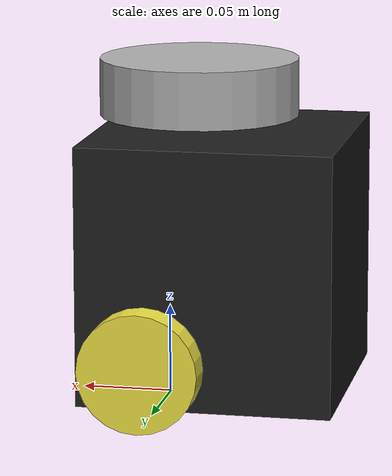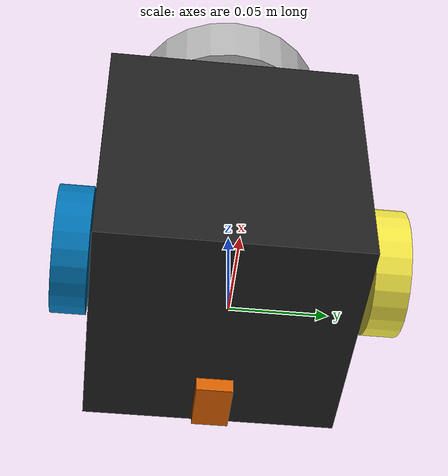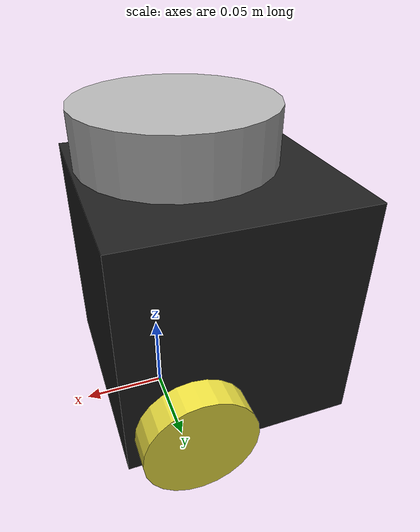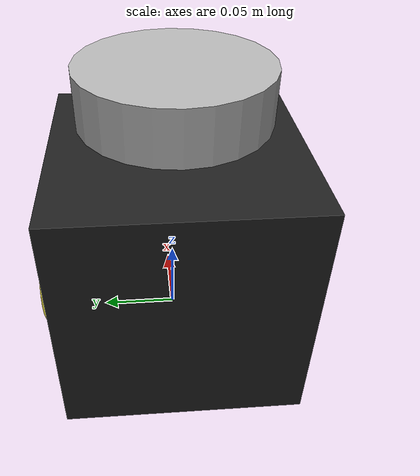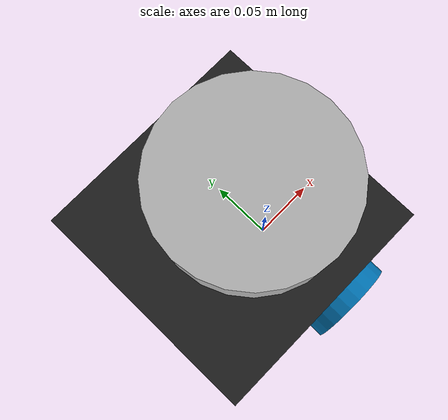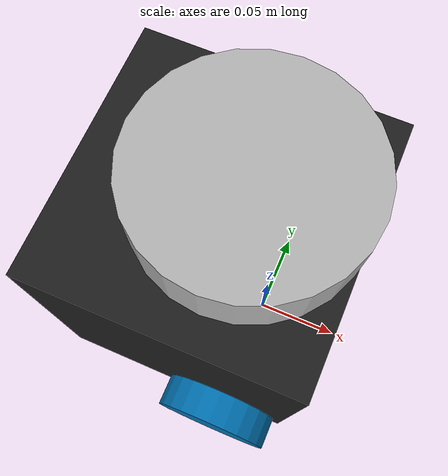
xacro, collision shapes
<?xml version="1.0" ?>
<robot name="turtlebot3_burger" xmlns:xacro="http://ros.org/wiki/xacro">
  <xacro:include filename="$(find prometheus_gazebo)/turtlebot3_model/urdf/common_properties.xacro"/>
  <xacro:include filename="$(find prometheus_gazebo)/turtlebot3_model/urdf/turtlebot3_burger.gazebo.xacro"/>
  <xacro:include filename="$(find prometheus_gazebo)/turtlebot3_model/urdf/camera_front.urdf.xacro"/>
  <xacro:include filename="$(find prometheus_gazebo)/turtlebot3_model/urdf/camera_front_config.urdf.xacro"/>

  <link name="base_footprint"/>

  <joint name="base_joint" type="fixed">
    <parent link="base_footprint"/>
    <child link="base_link"/>
    <origin xyz="0.0 0.0 0.010" rpy="0 0 0"/>
  </joint>

  <link name="base_link">
    <visual>
      <origin xyz="-0.032 0 0.0" rpy="0 0 0"/>
      <geometry>
        <mesh filename="package://prometheus_gazebo/turtlebot3_model/meshes/bases/burger_base.stl" scale="0.001 0.001 0.001"/>
      </geometry>
      <material name="light_black"/>
    </visual>

    <collision>
      <origin xyz="-0.032 0 0.070" rpy="0 0 0"/>
      <geometry>
        <box size="0.140 0.140 0.143"/>
      </geometry>
    </collision>

    <inertial>
      <origin xyz="0 0 0" rpy="0 0 0"/>
      <mass value="8.2573504e-01"/>
      <inertia ixx="2.2124416e-03" ixy="-1.2294101e-05" ixz="3.4938785e-05"
               iyy="2.1193702e-03" iyz="-5.0120904e-06"
               izz="2.0064271e-03" />
    </inertial>
  </link>

  <joint name="wheel_left_joint" type="continuous">
    <parent link="base_link"/>
    <child link="wheel_left_link"/>
    <origin xyz="0.0 0.08 0.023" rpy="-1.57 0 0"/>
    <axis xyz="0 0 1"/>
  </joint>

  <link name="wheel_left_link">
    <visual>
      <origin xyz="0 0 0" rpy="1.57 0 0"/>
      <geometry>
        <mesh filename="package://prometheus_gazebo/turtlebot3_model/meshes/wheels/left_tire.stl" scale="0.001 0.001 0.001"/>
      </geometry>
      <material name="dark"/>
    </visual>

    <collision>
      <origin xyz="0 0 0" rpy="0 0 0"/>
      <geometry>
        <cylinder length="0.018" radius="0.033"/>
      </geometry>
    </collision>

    <inertial>
      <origin xyz="0 0 0" />
      <mass value="2.8498940e-02" />
      <inertia ixx="1.1175580e-05" ixy="-4.2369783e-11" ixz="-5.9381719e-09"
               iyy="1.1192413e-05" iyz="-1.4400107e-11"
               izz="2.0712558e-05" />
      </inertial>
  </link>

  <joint name="wheel_right_joint" type="continuous">
    <parent link="base_link"/>
    <child link="wheel_right_link"/>
    <origin xyz="0.0 -0.080 0.023" rpy="-1.57 0 0"/>
    <axis xyz="0 0 1"/>
  </joint>

  <link name="wheel_right_link">
    <visual>
      <origin xyz="0 0 0" rpy="1.57 0 0"/>
      <geometry>
        <mesh filename="package://prometheus_gazebo/turtlebot3_model/meshes/wheels/right_tire.stl" scale="0.001 0.001 0.001"/>
      </geometry>
      <material name="dark"/>
    </visual>

    <collision>
      <origin xyz="0 0 0" rpy="0 0 0"/>
      <geometry>
        <cylinder length="0.018" radius="0.033"/>
      </geometry>
    </collision>

    <inertial>
      <origin xyz="0 0 0" />
      <mass value="2.8498940e-02" />
      <inertia ixx="1.1175580e-05" ixy="-4.2369783e-11" ixz="-5.9381719e-09"
               iyy="1.1192413e-05" iyz="-1.4400107e-11"
               izz="2.0712558e-05" />
      </inertial>
  </link>

  <joint name="caster_back_joint" type="fixed">
    <parent link="base_link"/>
    <child link="caster_back_link"/>
    <origin xyz="-0.081 0 -0.004" rpy="-1.57 0 0"/>
  </joint>

  <link name="caster_back_link">
    <collision>
      <origin xyz="0 0.001 0" rpy="0 0 0"/>
      <geometry>
        <box size="0.030 0.009 0.020"/>
      </geometry>
    </collision>

    <inertial>
      <origin xyz="0 0 0" />
      <mass value="0.005" />
      <inertia ixx="0.001" ixy="0.0" ixz="0.0"
               iyy="0.001" iyz="0.0"
               izz="0.001" />
    </inertial>
  </link>

  <joint name="imu_joint" type="fixed">
    <parent link="base_link"/>
    <child link="imu_link"/>
    <origin xyz="-0.032 0 0.068" rpy="0 0 0"/>
  </joint>

  <link name="imu_link"/>

  <joint name="scan_joint" type="fixed">
    <parent link="base_link"/>
    <child link="base_scan"/>
    <origin xyz="-0.032 0 0.172" rpy="0 0 0"/>
  </joint>

  <link name="base_scan">
    <visual>
      <origin xyz="0 0 0.0" rpy="0 0 0"/>
      <geometry>
        <mesh filename="package://prometheus_gazebo/turtlebot3_model/meshes/sensor/lds.stl" scale="0.001 0.001 0.001"/>
      </geometry>
      <material name="dark"/>
    </visual>

    <collision>
      <origin xyz="0.015 0 -0.0065" rpy="0 0 0"/>
      <geometry>
        <cylinder length="0.0315" radius="0.055"/>
      </geometry>
    </collision>

    <inertial>
      <mass value="0.114" />
      <origin xyz="0 0 0" />
      <inertia ixx="0.001" ixy="0.0" ixz="0.0"
               iyy="0.001" iyz="0.0"
               izz="0.001" />
    </inertial>
  </link>

</robot>

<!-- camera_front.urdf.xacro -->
<robot name="my_camera" xmlns:xacro="http://wiki.ros.org/xacro">
    <link name="camera">
        <visual>
            <geometry>
                <box size="0.01 0.01 0.01" />
            </geometry>
            <origin xyz="0.0 0.0 0.0" rpy="0.0 0.0 0.0" />
            <material name="black" />
        </visual>
        <collision>
            <geometry>
                <box size="0.01 0.01 0.01" />
            </geometry>
            <origin xyz="0.0 0.0 0.0" rpy="0.0 0.0 0.0" />
        </collision>
        <inertial>
            <mass value="0.001" />
            <inertia ixx="4.15e-6" ixy="0" ixz="0"
                   iyy="2.407e-6" iyz= "0"
                   izz="2.407e-6" />
        </inertial>
    </link>

    <joint name="camera2base_link" type="fixed">
        <parent link="base_link" />
        <child link="camera" />
        <origin xyz="0.03 0 0.1" />
    </joint>
    <gazebo reference="camera">
        <material>Gazebo/Blue</material>
    </gazebo>
</robot>
